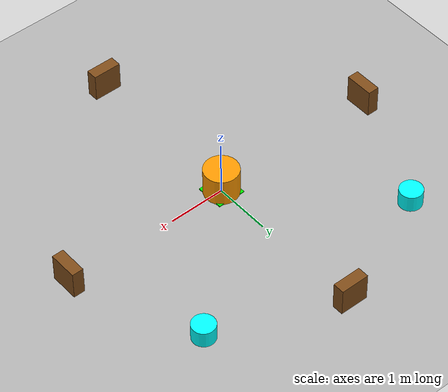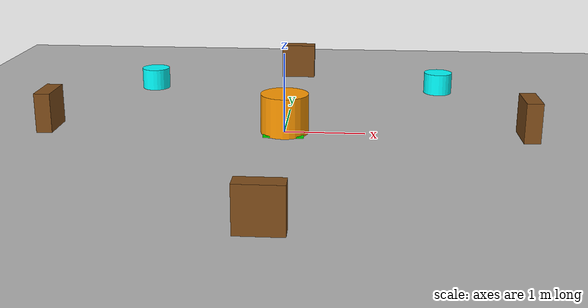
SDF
<?xml version="1.0" ?>
<!--
Simple circular course for testing
Perfect for validating the full stack without needing CAD models
-->
<sdf version="1.8">
  <world name="circular_course">
    <physics type="ode">
      <max_step_size>0.001</max_step_size>
      <real_time_factor>1.0</real_time_factor>
      <ode>
        <solver>
          <type>quick</type>
          <iters>50</iters>
          <sor>1.3</sor>
        </solver>
        <constraints>
          <cfm>1e-5</cfm>
          <erp>0.2</erp>
        </constraints>
      </ode>
    </physics>

    <light name="sun" type="directional">
      <cast_shadows>true</cast_shadows>
      <pose>5 5 10 0 0 0</pose>
      <diffuse>0.8 0.8 0.8 1</diffuse>
      <specular>0.2 0.2 0.2 1</specular>
      <attenuation>
        <range>1000</range>
        <constant>0.9</constant>
        <linear>0.01</linear>
        <quadratic>0.001</quadratic>
      </attenuation>
      <direction>-0.5 0.1 -0.9</direction>
    </light>

    <!-- Ground Plane -->
    <model name="ground_plane">
      <static>true</static>
      <link name="link">
        <collision name="collision">
          <geometry>
            <plane>
              <normal>0 0 1</normal>
              <size>20 20</size>
            </plane>
          </geometry>
          <surface>
            <friction>
              <ode>
                <mu>0.7</mu>
                <mu2>0.7</mu2>
              </ode>
            </friction>
          </surface>
        </collision>
        <visual name="visual">
          <geometry>
            <plane>
              <normal>0 0 1</normal>
              <size>20 20</size>
            </plane>
          </geometry>
          <material>
            <ambient>0.7 0.7 0.7 1</ambient>
            <diffuse>0.7 0.7 0.7 1</diffuse>
          </material>
        </visual>
      </link>
    </model>

    <!-- Start/Finish Zone (green marker) -->
    <model name="start_zone">
      <static>true</static>
      <pose>0 0 0.01 0 0 0</pose>
      <link name="link">
        <visual name="visual">
          <geometry>
            <box>
              <size>0.5 0.5 0.02</size>
            </box>
          </geometry>
          <material>
            <ambient>0 1 0 1</ambient>
            <diffuse>0 1 0 1</diffuse>
          </material>
        </visual>
      </link>
    </model>

    <!-- Outer circular boundary (radius 3m) -->
    <model name="outer_wall_1">
      <static>true</static>
      <pose>3 0 0.25 0 0 0</pose>
      <link name="link">
        <collision name="collision">
          <geometry>
            <box>
              <size>0.2 0.5 0.5</size>
            </box>
          </geometry>
        </collision>
        <visual name="visual">
          <geometry>
            <box>
              <size>0.2 0.5 0.5</size>
            </box>
          </geometry>
          <material>
            <ambient>0.5 0.3 0.1 1</ambient>
            <diffuse>0.5 0.3 0.1 1</diffuse>
          </material>
        </visual>
      </link>
    </model>

    <model name="outer_wall_2">
      <static>true</static>
      <pose>0 3 0.25 0 0 0</pose>
      <link name="link">
        <collision name="collision">
          <geometry>
            <box>
              <size>0.5 0.2 0.5</size>
            </box>
          </geometry>
        </collision>
        <visual name="visual">
          <geometry>
            <box>
              <size>0.5 0.2 0.5</size>
            </box>
          </geometry>
          <material>
            <ambient>0.5 0.3 0.1 1</ambient>
            <diffuse>0.5 0.3 0.1 1</diffuse>
          </material>
        </visual>
      </link>
    </model>

    <model name="outer_wall_3">
      <static>true</static>
      <pose>-3 0 0.25 0 0 0</pose>
      <link name="link">
        <collision name="collision">
          <geometry>
            <box>
              <size>0.2 0.5 0.5</size>
            </box>
          </geometry>
        </collision>
        <visual name="visual">
          <geometry>
            <box>
              <size>0.2 0.5 0.5</size>
            </box>
          </geometry>
          <material>
            <ambient>0.5 0.3 0.1 1</ambient>
            <diffuse>0.5 0.3 0.1 1</diffuse>
          </material>
        </visual>
      </link>
    </model>

    <model name="outer_wall_4">
      <static>true</static>
      <pose>0 -3 0.25 0 0 0</pose>
      <link name="link">
        <collision name="collision">
          <geometry>
            <box>
              <size>0.5 0.2 0.5</size>
            </box>
          </geometry>
        </collision>
        <visual name="visual">
          <geometry>
            <box>
              <size>0.5 0.2 0.5</size>
            </box>
          </geometry>
          <material>
            <ambient>0.5 0.3 0.1 1</ambient>
            <diffuse>0.5 0.3 0.1 1</diffuse>
          </material>
        </visual>
      </link>
    </model>

    <!-- Inner obstacle (orange cylinder in center) -->
    <model name="center_obstacle">
      <static>true</static>
      <pose>0 0 0.25 0 0 0</pose>
      <link name="link">
        <collision name="collision">
          <geometry>
            <cylinder>
              <radius>0.3</radius>
              <length>0.5</length>
            </cylinder>
          </geometry>
        </collision>
        <visual name="visual">
          <geometry>
            <cylinder>
              <radius>0.3</radius>
              <length>0.5</length>
            </cylinder>
          </geometry>
          <material>
            <ambient>1 0.6 0 1</ambient>
            <diffuse>1 0.6 0 1</diffuse>
          </material>
        </visual>
      </link>
    </model>

    <!-- Test obstacles (small cylinders around the circle) -->
    <model name="test_obstacle_1">
      <static>true</static>
      <pose>2.1 2.1 0.15 0 0 0</pose>
      <link name="link">
        <collision name="collision">
          <geometry>
            <cylinder>
              <radius>0.2</radius>
              <length>0.3</length>
            </cylinder>
          </geometry>
        </collision>
        <visual name="visual">
          <geometry>
            <cylinder>
              <radius>0.2</radius>
              <length>0.3</length>
            </cylinder>
          </geometry>
          <material>
            <ambient>0 1 1 1</ambient>
            <diffuse>0 1 1 1</diffuse>
          </material>
        </visual>
      </link>
    </model>

    <model name="test_obstacle_2">
      <static>true</static>
      <pose>-2.1 2.1 0.15 0 0 0</pose>
      <link name="link">
        <collision name="collision">
          <geometry>
            <cylinder>
              <radius>0.2</radius>
              <length>0.3</length>
            </cylinder>
          </geometry>
        </collision>
        <visual name="visual">
          <geometry>
            <cylinder>
              <radius>0.2</radius>
              <length>0.3</length>
            </cylinder>
          </geometry>
          <material>
            <ambient>0 1 1 1</ambient>
            <diffuse>0 1 1 1</diffuse>
          </material>
        </visual>
      </link>
    </model>

  </world>
</sdf>
